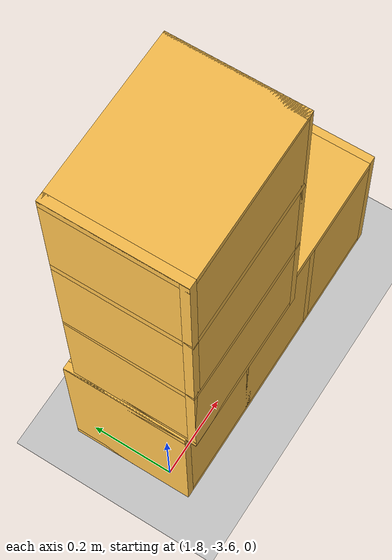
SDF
<sdf version="1.7">
 <world name="default">
  <light name="sun" type="directional">
   <pose>0 0 10 0 -0 0</pose>
   <diffuse>0.8 0.8 0.8 1</diffuse>
   <specular>0.2 0.2 0.2 1</specular>
   <attenuation>
    <range>1000</range>
    <constant>0.9</constant>
    <linear>0.01</linear>
    <quadratic>0.001</quadratic>
   </attenuation>
   <direction>-0.5 0.1 -0.9</direction>
   <spot><inner_angle>0</inner_angle><outer_angle>0</outer_angle><falloff>0</falloff></spot>
  </light>
  <model name="ground_plane">
   <static>1</static>
   <link name="link">
    <collision name="collision">
     <geometry><plane><normal>0 0 1</normal><size>100 100</size></plane></geometry>
     <surface>
      <contact><collide_bitmask>65535</collide_bitmask></contact>
      <friction><ode><mu>100</mu><mu2>50</mu2></ode></friction>
     </surface>
    </collision>
    <visual name="visual">
     <cast_shadows>0</cast_shadows>
     <geometry><plane><normal>0 0 1</normal><size>100 100</size></plane></geometry>
     <material>
      <script><uri>file://media/materials/scripts/gazebo.material</uri><name>Gazebo/Grey</name></script>
     </material>
    </visual>
   </link>
  </model>
  <gravity>0 0 -9.8</gravity>
  <magnetic_field>6e-06 2.3e-05 -4.2e-05</magnetic_field>
  <atmosphere type="adiabatic"/>
  <physics type="ode">
   <max_step_size>0.001</max_step_size>
   <real_time_factor>1</real_time_factor>
   <real_time_update_rate>1000</real_time_update_rate>
  </physics>
  <scene><ambient>0.4 0.4 0.4 1</ambient><background>0.7 0.7 0.7 1</background><shadows>1</shadows></scene>
  <spherical_coordinates>
   <surface_model>EARTH_WGS84</surface_model>
   <latitude_deg>0</latitude_deg>
   <longitude_deg>0</longitude_deg>
   <elevation>0</elevation>
   <heading_deg>0</heading_deg>
  </spherical_coordinates>
  <model name="Wall_Cabinet_15x30">
   <pose>2.15726 -3.51732 -0.005061 0 0 -1.56703</pose>
   <link name="Wall_0">
    <pose>0 0.374 0.192 0 -0 0</pose>
    <inertial>
     <mass>0.9882</mass>
     <inertia><ixx>0.0072</ixx><iyy>0.0194</iyy><izz>0.0122</izz><ixy>0</ixy><ixz>0</ixz><iyz>0</iyz></inertia>
    </inertial>
    <collision name="Wall_0_Collision"><geometry><box><size>0.296 0.02 0.384</size></box></geometry></collision>
    <visual name="Wall_0_Visual">
     <geometry><box><size>0.296 0.02 0.384</size></box></geometry>
     <material>
      <script><uri>file://media/materials/scripts/gazebo.material</uri><name>Gazebo/Grey</name></script>
      <ambient>1 0.764706 0.305882 1</ambient>
     </material>
    </visual>
   </link>
   <joint name="0_2" type="fixed">
    <pose>0 0 0.192 0 -0 0</pose>
    <parent>Wall_2</parent>
    <child>Wall_0</child>
    <axis><xyz>0 0 1</xyz><limit><lower>-1e+16</lower><upper>1e+16</upper></limit></axis>
   </joint>
   <joint name="0_4" type="fixed">
    <pose>0 0 -0.192 0 -0 0</pose>
    <parent>Wall_4</parent>
    <child>Wall_0</child>
    <axis><xyz>0 0 1</xyz><limit><lower>-1e+16</lower><upper>1e+16</upper></limit></axis>
   </joint>
   <joint name="0_15" type="fixed">
    <pose>0.148 0 0 0 -0 0</pose>
    <parent>Wall_15</parent>
    <child>Wall_0</child>
    <axis><xyz>1 0 0</xyz><limit><lower>-1e+16</lower><upper>1e+16</upper></limit></axis>
   </joint>
   <link name="Wall_11">
    <pose>0 -0.132768 0.192 0 -0 0</pose>
    <inertial>
     <mass>0.9882</mass>
     <inertia><ixx>0.0072</ixx><iyy>0.0194</iyy><izz>0.0122</izz><ixy>0</ixy><ixz>0</ixz><iyz>0</iyz></inertia>
    </inertial>
    <collision name="Wall_11_Collision"><geometry><box><size>0.296 0.02 0.384</size></box></geometry></collision>
    <visual name="Wall_11_Visual">
     <geometry><box><size>0.296 0.02 0.384</size></box></geometry>
     <material>
      <script><uri>file://media/materials/scripts/gazebo.material</uri><name>Gazebo/Grey</name></script>
      <ambient>1 0.764706 0.305882 1</ambient>
     </material>
    </visual>
   </link>
   <joint name="11_2" type="fixed">
    <pose>0 0 0.192 0 -0 0</pose>
    <parent>Wall_2</parent>
    <child>Wall_11</child>
    <axis><xyz>0 0 1</xyz><limit><lower>-1e+16</lower><upper>1e+16</upper></limit></axis>
   </joint>
   <joint name="11_4" type="fixed">
    <pose>0 0 -0.192 0 -0 0</pose>
    <parent>Wall_4</parent>
    <child>Wall_11</child>
    <axis><xyz>0 0 1</xyz><limit><lower>-1e+16</lower><upper>1e+16</upper></limit></axis>
   </joint>
   <joint name="11_15" type="fixed">
    <pose>0.148 0 0 0 -0 0</pose>
    <parent>Wall_15</parent>
    <child>Wall_11</child>
    <axis><xyz>1 0 0</xyz><limit><lower>-1e+16</lower><upper>1e+16</upper></limit></axis>
   </joint>
   <link name="Wall_15">
    <pose>0.138 0 0.19 0 -0 0</pose>
    <inertial>
     <mass>2.5241</mass>
     <inertia><ixx>0.0305</ixx><iyy>0.1229</iyy><izz>0.1532</izz><ixy>0</ixy><ixz>0</ixz><iyz>0</iyz></inertia>
    </inertial>
    <collision name="Wall_15_Collision"><geometry><box><size>0.02 0.764 0.38</size></box></geometry></collision>
    <visual name="Wall_15_Visual">
     <geometry><box><size>0.02 0.764 0.38</size></box></geometry>
     <material>
      <script><uri>file://media/materials/scripts/gazebo.material</uri><name>Gazebo/Grey</name></script>
      <ambient>1 0.764706 0.305882 1</ambient>
     </material>
    </visual>
   </link>
   <joint name="15_2" type="fixed">
    <pose>0 0 0.19 0 -0 0</pose>
    <parent>Wall_2</parent>
    <child>Wall_15</child>
    <axis><xyz>0 0 1</xyz><limit><lower>-1e+16</lower><upper>1e+16</upper></limit></axis>
   </joint>
   <joint name="15_4" type="fixed">
    <pose>0 0 -0.19 0 -0 0</pose>
    <parent>Wall_4</parent>
    <child>Wall_15</child>
    <axis><xyz>0 0 1</xyz><limit><lower>-1e+16</lower><upper>1e+16</upper></limit></axis>
   </joint>
   <link name="Wall_2">
    <pose>0 0 0.374 0 -0 0</pose>
    <inertial>
     <mass>1.9765</mass>
     <inertia><ixx>0.0145</ixx><iyy>0.1116</iyy><izz>0.0972</izz><ixy>0</ixy><ixz>0</ixz><iyz>0</iyz></inertia>
    </inertial>
    <collision name="Wall_2_Collision"><geometry><box><size>0.296 0.768 0.02</size></box></geometry></collision>
    <visual name="Wall_2_Visual">
     <geometry><box><size>0.296 0.768 0.02</size></box></geometry>
     <material>
      <script><uri>file://media/materials/scripts/gazebo.material</uri><name>Gazebo/Grey</name></script>
      <ambient>1 0.764706 0.305882 1</ambient>
     </material>
    </visual>
   </link>
   <link name="Wall_4">
    <pose>0 0 0.01 0 -0 0</pose>
    <inertial>
     <mass>1.9765</mass>
     <inertia><ixx>0.0145</ixx><iyy>0.1116</iyy><izz>0.0972</izz><ixy>0</ixy><ixz>0</ixz><iyz>0</iyz></inertia>
    </inertial>
    <collision name="Wall_4_Collision"><geometry><box><size>0.296 0.768 0.02</size></box></geometry></collision>
    <visual name="Wall_4_Visual">
     <geometry><box><size>0.296 0.768 0.02</size></box></geometry>
     <material>
      <script><uri>file://media/materials/scripts/gazebo.material</uri><name>Gazebo/Grey</name></script>
      <ambient>1 0.764706 0.305882 1</ambient>
     </material>
    </visual>
    <pose>-0.181124 0 0 0 0 -1.5708</pose>
   </link>
   <link name="Wall_6">
    <pose>0 -0.374 0.192 0 -0 0</pose>
    <inertial>
     <mass>0.9882</mass>
     <inertia><ixx>0.0072</ixx><iyy>0.0194</iyy><izz>0.0122</izz><ixy>0</ixy><ixz>0</ixz><iyz>0</iyz></inertia>
    </inertial>
    <collision name="Wall_6_Collision"><geometry><box><size>0.296 0.02 0.384</size></box></geometry></collision>
    <visual name="Wall_6_Visual">
     <geometry><box><size>0.296 0.02 0.384</size></box></geometry>
     <material>
      <script><uri>file://media/materials/scripts/gazebo.material</uri><name>Gazebo/Grey</name></script>
      <ambient>1 0.764706 0.305882 1</ambient>
     </material>
    </visual>
   </link>
   <joint name="6_2" type="fixed">
    <pose>0 0 0.192 0 -0 0</pose>
    <parent>Wall_2</parent>
    <child>Wall_6</child>
    <axis><xyz>0 0 1</xyz><limit><lower>-1e+16</lower><upper>1e+16</upper></limit></axis>
   </joint>
   <joint name="6_4" type="fixed">
    <pose>0 0 -0.192 0 -0 0</pose>
    <parent>Wall_4</parent>
    <child>Wall_6</child>
    <axis><xyz>0 0 1</xyz><limit><lower>-1e+16</lower><upper>1e+16</upper></limit></axis>
   </joint>
   <joint name="6_15" type="fixed">
    <pose>0.148 0 0 0 -0 0</pose>
    <parent>Wall_15</parent>
    <child>Wall_6</child>
    <axis><xyz>1 0 0</xyz><limit><lower>-1e+16</lower><upper>1e+16</upper></limit></axis>
   </joint>
   <link name="Wall_8">
    <pose>0 0.120833 0.192 0 -0 0</pose>
    <inertial>
     <mass>0.9882</mass>
     <inertia><ixx>0.0072</ixx><iyy>0.0194</iyy><izz>0.0122</izz><ixy>0</ixy><ixz>0</ixz><iyz>0</iyz></inertia>
    </inertial>
    <collision name="Wall_8_Collision"><geometry><box><size>0.296 0.02 0.384</size></box></geometry></collision>
    <visual name="Wall_8_Visual">
     <geometry><box><size>0.296 0.02 0.384</size></box></geometry>
     <material>
      <script><uri>file://media/materials/scripts/gazebo.material</uri><name>Gazebo/Grey</name></script>
      <ambient>1 0.764706 0.305882 1</ambient>
     </material>
    </visual>
   </link>
   <joint name="8_2" type="fixed">
    <pose>0 0 0.192 0 -0 0</pose>
    <parent>Wall_2</parent>
    <child>Wall_8</child>
    <axis><xyz>0 0 1</xyz><limit><lower>-1e+16</lower><upper>1e+16</upper></limit></axis>
   </joint>
   <joint name="8_4" type="fixed">
    <pose>0 0 -0.192 0 -0 0</pose>
    <parent>Wall_4</parent>
    <child>Wall_8</child>
    <axis><xyz>0 0 1</xyz><limit><lower>-1e+16</lower><upper>1e+16</upper></limit></axis>
   </joint>
   <joint name="8_15" type="fixed">
    <pose>0.148 0 0 0 -0 0</pose>
    <parent>Wall_15</parent>
    <child>Wall_8</child>
    <axis><xyz>1 0 0</xyz><limit><lower>-1e+16</lower><upper>1e+16</upper></limit></axis>
   </joint>
   <static>1</static>
  </model>
  <model name="Wall_Cabinet_15x30_0">
   <pose>1.77885 -3.54333 0.754248 -1.57079 0.002756 -1.56714</pose>
   <link name="Wall_0">
    <pose>0 0.374 0.192 0 -0 0</pose>
    <inertial>
     <mass>0.9882</mass>
     <inertia><ixx>0.0072</ixx><iyy>0.0194</iyy><izz>0.0122</izz><ixy>0</ixy><ixz>0</ixz><iyz>0</iyz></inertia>
    </inertial>
    <collision name="Wall_0_Collision"><geometry><box><size>0.296 0.02 0.384</size></box></geometry></collision>
    <visual name="Wall_0_Visual">
     <geometry><box><size>0.296 0.02 0.384</size></box></geometry>
     <material>
      <script><uri>file://media/materials/scripts/gazebo.material</uri><name>Gazebo/Grey</name></script>
      <ambient>1 0.764706 0.305882 1</ambient>
     </material>
    </visual>
   </link>
   <joint name="0_2" type="fixed">
    <pose>0 0 0.192 0 -0 0</pose>
    <parent>Wall_2</parent>
    <child>Wall_0</child>
    <axis><xyz>0 0 1</xyz><limit><lower>-1e+16</lower><upper>1e+16</upper></limit></axis>
   </joint>
   <joint name="0_4" type="fixed">
    <pose>0 0 -0.192 0 -0 0</pose>
    <parent>Wall_4</parent>
    <child>Wall_0</child>
    <axis><xyz>0 0 1</xyz><limit><lower>-1e+16</lower><upper>1e+16</upper></limit></axis>
   </joint>
   <joint name="0_15" type="fixed">
    <pose>0.148 0 0 0 -0 0</pose>
    <parent>Wall_15</parent>
    <child>Wall_0</child>
    <axis><xyz>1 0 0</xyz><limit><lower>-1e+16</lower><upper>1e+16</upper></limit></axis>
   </joint>
   <link name="Wall_11">
    <pose>0 -0.132768 0.192 0 -0 0</pose>
    <inertial>
     <mass>0.9882</mass>
     <inertia><ixx>0.0072</ixx><iyy>0.0194</iyy><izz>0.0122</izz><ixy>0</ixy><ixz>0</ixz><iyz>0</iyz></inertia>
    </inertial>
    <collision name="Wall_11_Collision"><geometry><box><size>0.296 0.02 0.384</size></box></geometry></collision>
    <visual name="Wall_11_Visual">
     <geometry><box><size>0.296 0.02 0.384</size></box></geometry>
     <material>
      <script><uri>file://media/materials/scripts/gazebo.material</uri><name>Gazebo/Grey</name></script>
      <ambient>1 0.764706 0.305882 1</ambient>
     </material>
    </visual>
   </link>
   <joint name="11_2" type="fixed">
    <pose>0 0 0.192 0 -0 0</pose>
    <parent>Wall_2</parent>
    <child>Wall_11</child>
    <axis><xyz>0 0 1</xyz><limit><lower>-1e+16</lower><upper>1e+16</upper></limit></axis>
   </joint>
   <joint name="11_4" type="fixed">
    <pose>0 0 -0.192 0 -0 0</pose>
    <parent>Wall_4</parent>
    <child>Wall_11</child>
    <axis><xyz>0 0 1</xyz><limit><lower>-1e+16</lower><upper>1e+16</upper></limit></axis>
   </joint>
   <joint name="11_15" type="fixed">
    <pose>0.148 0 0 0 -0 0</pose>
    <parent>Wall_15</parent>
    <child>Wall_11</child>
    <axis><xyz>1 0 0</xyz><limit><lower>-1e+16</lower><upper>1e+16</upper></limit></axis>
   </joint>
   <link name="Wall_15">
    <pose>0.138 0 0.19 0 -0 0</pose>
    <inertial>
     <mass>2.5241</mass>
     <inertia><ixx>0.0305</ixx><iyy>0.1229</iyy><izz>0.1532</izz><ixy>0</ixy><ixz>0</ixz><iyz>0</iyz></inertia>
    </inertial>
    <collision name="Wall_15_Collision"><geometry><box><size>0.02 0.764 0.38</size></box></geometry></collision>
    <visual name="Wall_15_Visual">
     <geometry><box><size>0.02 0.764 0.38</size></box></geometry>
     <material>
      <script><uri>file://media/materials/scripts/gazebo.material</uri><name>Gazebo/Grey</name></script>
      <ambient>1 0.764706 0.305882 1</ambient>
     </material>
    </visual>
   </link>
   <joint name="15_2" type="fixed">
    <pose>0 0 0.19 0 -0 0</pose>
    <parent>Wall_2</parent>
    <child>Wall_15</child>
    <axis><xyz>0 0 1</xyz><limit><lower>-1e+16</lower><upper>1e+16</upper></limit></axis>
   </joint>
   <joint name="15_4" type="fixed">
    <pose>0 0 -0.19 0 -0 0</pose>
    <parent>Wall_4</parent>
    <child>Wall_15</child>
    <axis><xyz>0 0 1</xyz><limit><lower>-1e+16</lower><upper>1e+16</upper></limit></axis>
   </joint>
   <link name="Wall_2">
    <pose>0 0 0.374 0 -0 0</pose>
    <inertial>
     <mass>1.9765</mass>
     <inertia><ixx>0.0145</ixx><iyy>0.1116</iyy><izz>0.0972</izz><ixy>0</ixy><ixz>0</ixz><iyz>0</iyz></inertia>
    </inertial>
    <collision name="Wall_2_Collision"><geometry><box><size>0.296 0.768 0.02</size></box></geometry></collision>
    <visual name="Wall_2_Visual">
     <geometry><box><size>0.296 0.768 0.02</size></box></geometry>
     <material>
      <script><uri>file://media/materials/scripts/gazebo.material</uri><name>Gazebo/Grey</name></script>
      <ambient>1 0.764706 0.305882 1</ambient>
     </material>
    </visual>
   </link>
   <link name="Wall_4">
    <pose>0 0 0.01 0 -0 0</pose>
    <inertial>
     <mass>1.9765</mass>
     <inertia><ixx>0.0145</ixx><iyy>0.1116</iyy><izz>0.0972</izz><ixy>0</ixy><ixz>0</ixz><iyz>0</iyz></inertia>
    </inertial>
    <collision name="Wall_4_Collision"><geometry><box><size>0.296 0.768 0.02</size></box></geometry></collision>
    <visual name="Wall_4_Visual">
     <geometry><box><size>0.296 0.768 0.02</size></box></geometry>
     <material>
      <script><uri>file://media/materials/scripts/gazebo.material</uri><name>Gazebo/Grey</name></script>
      <ambient>1 0.764706 0.305882 1</ambient>
     </material>
    </visual>
    <pose>-0.181124 0 0 0 0 -1.5708</pose>
   </link>
   <link name="Wall_6">
    <pose>0 -0.374 0.192 0 -0 0</pose>
    <inertial>
     <mass>0.9882</mass>
     <inertia><ixx>0.0072</ixx><iyy>0.0194</iyy><izz>0.0122</izz><ixy>0</ixy><ixz>0</ixz><iyz>0</iyz></inertia>
    </inertial>
    <collision name="Wall_6_Collision"><geometry><box><size>0.296 0.02 0.384</size></box></geometry></collision>
    <visual name="Wall_6_Visual">
     <geometry><box><size>0.296 0.02 0.384</size></box></geometry>
     <material>
      <script><uri>file://media/materials/scripts/gazebo.material</uri><name>Gazebo/Grey</name></script>
      <ambient>1 0.764706 0.305882 1</ambient>
     </material>
    </visual>
   </link>
   <joint name="6_2" type="fixed">
    <pose>0 0 0.192 0 -0 0</pose>
    <parent>Wall_2</parent>
    <child>Wall_6</child>
    <axis><xyz>0 0 1</xyz><limit><lower>-1e+16</lower><upper>1e+16</upper></limit></axis>
   </joint>
   <joint name="6_4" type="fixed">
    <pose>0 0 -0.192 0 -0 0</pose>
    <parent>Wall_4</parent>
    <child>Wall_6</child>
    <axis><xyz>0 0 1</xyz><limit><lower>-1e+16</lower><upper>1e+16</upper></limit></axis>
   </joint>
   <joint name="6_15" type="fixed">
    <pose>0.148 0 0 0 -0 0</pose>
    <parent>Wall_15</parent>
    <child>Wall_6</child>
    <axis><xyz>1 0 0</xyz><limit><lower>-1e+16</lower><upper>1e+16</upper></limit></axis>
   </joint>
   <link name="Wall_8">
    <pose>0 0.120833 0.192 0 -0 0</pose>
    <inertial>
     <mass>0.9882</mass>
     <inertia><ixx>0.0072</ixx><iyy>0.0194</iyy><izz>0.0122</izz><ixy>0</ixy><ixz>0</ixz><iyz>0</iyz></inertia>
    </inertial>
    <collision name="Wall_8_Collision"><geometry><box><size>0.296 0.02 0.384</size></box></geometry></collision>
    <visual name="Wall_8_Visual">
     <geometry><box><size>0.296 0.02 0.384</size></box></geometry>
     <material>
      <script><uri>file://media/materials/scripts/gazebo.material</uri><name>Gazebo/Grey</name></script>
      <ambient>1 0.764706 0.305882 1</ambient>
     </material>
    </visual>
   </link>
   <joint name="8_2" type="fixed">
    <pose>0 0 0.192 0 -0 0</pose>
    <parent>Wall_2</parent>
    <child>Wall_8</child>
    <axis><xyz>0 0 1</xyz><limit><lower>-1e+16</lower><upper>1e+16</upper></limit></axis>
   </joint>
   <joint name="8_4" type="fixed">
    <pose>0 0 -0.192 0 -0 0</pose>
    <parent>Wall_4</parent>
    <child>Wall_8</child>
    <axis><xyz>0 0 1</xyz><limit><lower>-1e+16</lower><upper>1e+16</upper></limit></axis>
   </joint>
   <joint name="8_15" type="fixed">
    <pose>0.148 0 0 0 -0 0</pose>
    <parent>Wall_15</parent>
    <child>Wall_8</child>
    <axis><xyz>1 0 0</xyz><limit><lower>-1e+16</lower><upper>1e+16</upper></limit></axis>
   </joint>
   <static>1</static>
  </model>
 </world>
</sdf>
